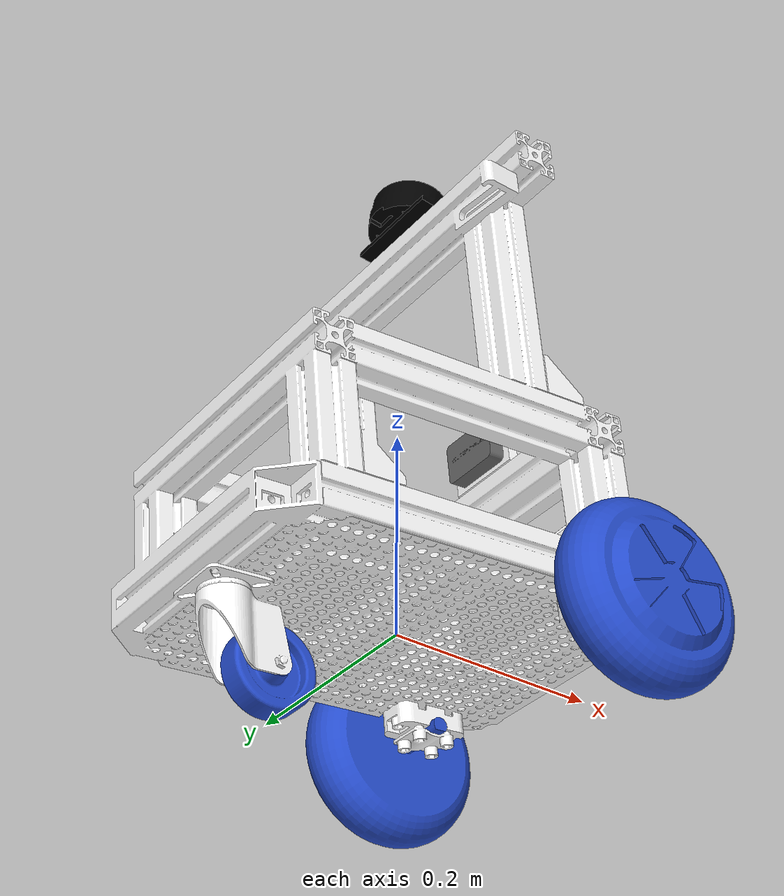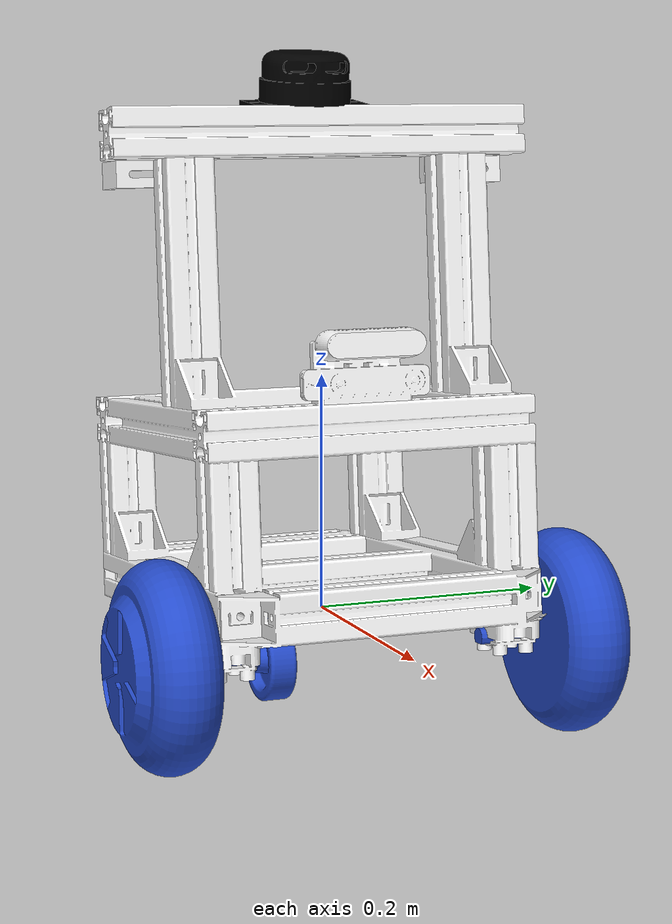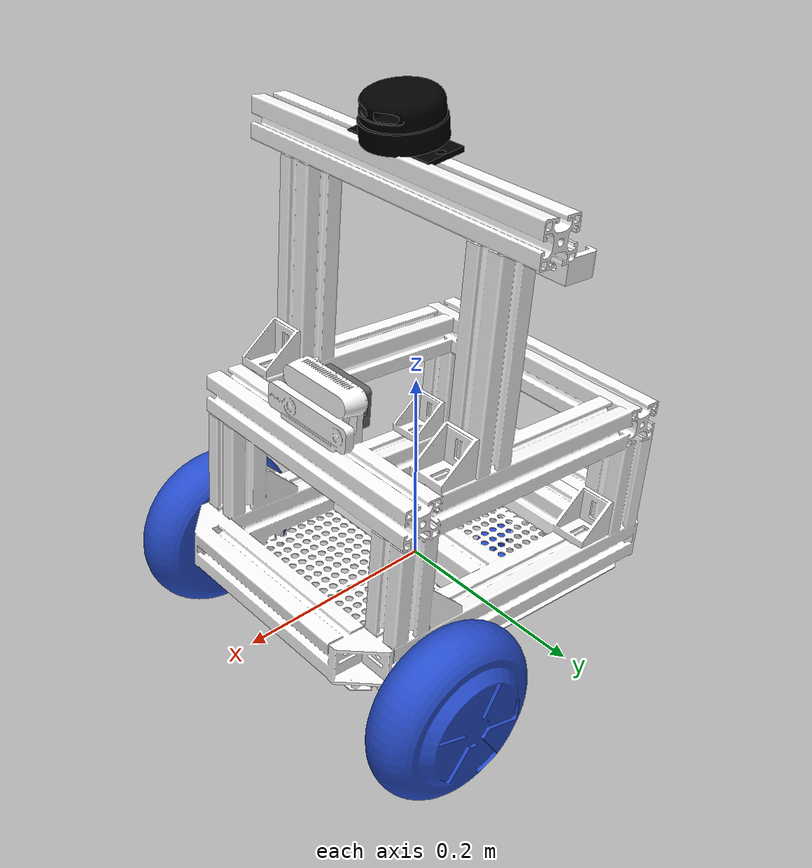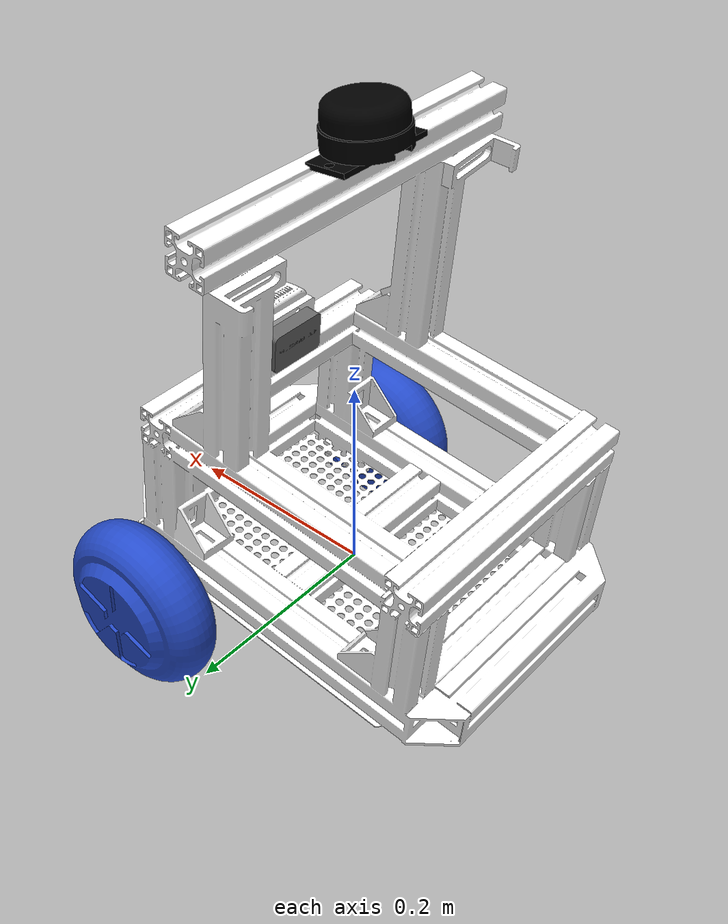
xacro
<?xml version="1.0" ?>
<robot name="mubot_navigation" xmlns:xacro="http://www.ros.org/wiki/xacro">

<xacro:include filename="$(find mubot_navigation)/urdf/mubot_materials.xacro" />

<xacro:include filename="$(find mubot_navigation)/gazebo/mubot_gazebo_materials.gazebo" />
<xacro:include filename="$(find mubot_navigation)/gazebo/mubot_gazebo_physics.gazebo" />
<xacro:include filename="$(find mubot_navigation)/gazebo/mubot_gazebo_plugins.gazebo" />

<!-- Define intertial property macros  -->
  <xacro:macro name="footprint_inertia" params="m w h d">
    <inertial>
      <origin xyz="0 0 0" rpy="0 0 0"/>
      <mass value="${m}"/>
      <inertia ixx="${(m/12) * (h*h + d*d)}" ixy="0.0" ixz="0.0" iyy="${(m/12) * (w*w + d*d)}" iyz="0.0" izz="${(m/12) * (w*w + h*h)}"/>
    </inertial>
  </xacro:macro>

<!-- ****************** ROBOT BASE FOOTPRINT ***************************  -->
  <!-- Define the center of the main robot chassis projected on the ground -->
  <link name="base_footprint">
    <xacro:footprint_inertia m="0" w="0" d="0" h="0"/>
  </link>

  <!-- The base footprint of the robot is located underneath the chassis -->
  <joint name="base_joint" type="fixed">
    <parent link="base_link"/>
    <child link="base_footprint"/>
    <origin xyz="0.0 0.0 -0.13" rpy="0 0 0"/>
  </joint>

<link name="base_link">
  <inertial>
    <origin xyz="-0.0136084000974873 -0.00499482087104461 0.123769128463892" rpy="0 0 0" />
    <mass  value="2.87937344341329" />
      <inertia ixx="0.00923445713103192" ixy="3.52264289819142e-06" ixz="-0.000441310208157926" iyy="0.007778859984883" iyz="-1.92193662635582e-06" izz="0.0139740820591221" />
    </inertial>
    <visual>
      <origin  xyz="0 0 0" rpy="0 0 0" />
     <geometry>
      <mesh filename="package://mubot_navigation/meshes/base_link.STL" />
    </geometry>
    <material name="white"/>
  </visual>
  <collision>
    <origin rpy="0 0 0" xyz="0 0 0"/>
    <geometry>
      <mesh filename="package://mubot_navigation/meshes/base_link.STL" />
    </geometry>
  </collision>
</link>

<link name="rightwheel_link">
  <inertial>
      <origin xyz="0.000348357029544388 0.0317321533300312 0.000261322314043799" rpy="0 0 0" />
      <mass value="1.20281527208295" />
      <inertia ixx="0.00224144277374002" ixy="1.36272157740343e-07" ixz="-1.17061213813287e-07" iyy="0.00378443700729495" iyz="-1.52384434101423e-07" izz="0.00224154314643243" />
    </inertial>
    <visual>
      <origin
        xyz="0 0 0"
        rpy="0 0 0" />
      <geometry>
      <mesh filename="package://mubot_navigation/meshes/rightwheel_link.STL" />
    </geometry>
    <material name="blue"/>
  </visual>
  <collision>
    <origin rpy="0 0 0" xyz="0 0 0"/>
    <geometry>
      <mesh filename="package://mubot_navigation/meshes/rightwheel_link.STL" />
    </geometry>
  </collision>
</link>

<link name="leftwheel_link">
<inertial>
  <origin xyz="-0.000352673824352112 -0.0317321533300245 0.000255466525181297" rpy="0 0 0" />
      <mass value="1.20281527208295" />
      <inertia ixx="0.00224143889126708" ixy="1.33707553267732e-07" ixz="1.15319382243967e-07" iyy="0.00378443700729495" iyz="1.54639604851796e-07" izz="0.00224154702890537" />
 </inertial>
  <visual>
    <origin rpy="0 0 0" xyz="0 0 0"/>
    <geometry>
      <mesh filename="package://mubot_navigation/meshes/leftwheel_link.STL" />
    </geometry>
    <material name="blue"/>
  </visual>
  <collision>
    <origin rpy="0 0 0" xyz="0 0 0"/>
    <geometry>
      <mesh filename="package://mubot_navigation/meshes/leftwheel_link.STL" />
    </geometry>
  </collision>
</link>

<link name="casterwheel_link">
 <inertial>
      <origin xyz="-6.24439615906636e-05 0.00990492035647383 -5.80874061309467e-06" rpy="0 0 0" />
      <mass value="0.100245438847884" />
      <inertia ixx="4.77243077216562e-05" ixy="-2.46163109776874e-07" ixz="1.44362357471191e-10" iyy="8.67693815516973e-05" iyz="-2.28988939327255e-08" izz="4.77227692553699e-05" />
    </inertial>
  <visual>
    <origin rpy="0 0 0" xyz="0 0 0"/>
    <geometry>
      <mesh filename="package://mubot_navigation/meshes/casterwheel_link.STL" />
    </geometry>
    <material name="blue"/>
  </visual>
  <collision>
    <origin rpy="0 0 0" xyz="0 0 0"/>
    <geometry>
      <mesh filename="package://mubot_navigation/meshes/casterwheel_link.STL" />
    </geometry>
  </collision>
</link>

<link name="lidar_link">
  <inertial>
      <origin xyz="-0.00275922326082423 -3.31898697414346E-09 -0.0238638841119722" rpy="0 0 0" />
      <mass value="0.184636979847826" />
      <inertia ixx="0.000103449890522048" ixy="-5.13903986856189e-11" ixz="4.77430413979597e-06" iyy="8.60324507903863e-05" iyz="-2.25997898356887e-11" izz="0.000127438215274729" />
    </inertial>
    <visual>
      <origin
        xyz="0 0 0"
        rpy="0 0 0" />
   <geometry>
      <mesh filename="package://mubot_navigation/meshes/lidar_Link.STL" />
    </geometry>
    <material name="black"/>
  </visual>
  <collision>
    <origin rpy="0 0 0" xyz="0 0 0"/>
    <geometry>
      <mesh filename="package://mubot_navigation/meshes/lidar_Link.STL" />
    </geometry>
  </collision>
</link>

<link name="camera_link">
  <inertial>
      <origin xyz="0.0162971268748396 0.0029869799766481 0.00522728663273986" rpy="0 0 0" />
      <mass value="0.114396036760118" />
      <inertia ixx="8.33969676064508e-05" ixy="1.79636899763931e-07" ixz="3.17036861263759e-06" iyy="1.7277322876418e-05" iyz="4.50856779192012e-08" izz="7.67394181590166e-05" />
    </inertial>
    <visual>
      <origin
        xyz="0 0 0"
        rpy="0 0 0" />
    <geometry>
      <mesh filename="package://mubot_navigation/meshes/camera_link.STL" />
    </geometry>
    <material name="white"/>
  </visual>
  <collision>
    <origin rpy="0 0 0" xyz="0 0 0"/>
    <geometry>
      <mesh filename="package://mubot_navigation/meshes/camera_link.STL" />
    </geometry>
  </collision>
</link>

<link name="imu_link">
  <inertial>
      <origin xyz="0.00753837730862272 -0.000163080304747665 3.09106131575754e-05" rpy="0 0 0" />
      <mass value="0.0352181888426215" />
      <inertia ixx="1.49798975786619e-05" ixy="-9.01256775385173e-09" ixz="-1.82165438541265e-09" iyy="5.34424428177353e-06" iyz="-7.62428059050258e-10" izz="1.09603367236951e-05" />
    </inertial>
    <visual>
      <origin
        xyz="0 0 0"
        rpy="0 0 0" />
   <geometry>
      <mesh filename="package://mubot_navigation/meshes/imu_Link.STL" />
    </geometry>
    <material name="grey"/>
  </visual>
  <collision>
    <origin rpy="0 0 0" xyz="0 0 0"/>
    <geometry>
      <mesh filename="package://mubot_navigation/meshes/imu_Link.STL" />
    </geometry>
  </collision>
</link>

<joint name="rightwheel_joint" type="continuous">
  <origin xyz="0.11527 -0.21055 -0.0088694" rpy="0 0 0" />
  <parent link="base_link"/>
  <child link="rightwheel_link"/>
  <axis xyz="0.0 1.0 0.0"/>
</joint>

<joint name="leftwheel_joint" type="continuous">
   <origin xyz="0.11596 0.20485 -0.0088636" rpy="0 0 0" />
  <parent link="base_link"/>
  <child link="leftwheel_link"/>
  <axis xyz="0.0 1.0 0.0"/>   <!-- change the value to minus to reverse the direction of motion -->
</joint>

<joint name="casterwheel_joint" type="fixed">
  <origin xyz="-0.12387 -0.012159 -0.075297"  rpy="0 0 0" />
  <parent link="base_link"/>
  <child link="casterwheel_link"/>
</joint>

<joint name="lidar_joint" type="fixed">
  <origin xyz="0.0045887 -0.015258 0.46928" rpy="0 0 0" />
  <parent link="base_link"/>
  <child link="lidar_link"/>
</joint>

<joint name="camera_joint" type="fixed">
  <origin xyz="0.089004 -0.0064195 0.21502" rpy="0 0 0" />
  <parent link="base_link"/>
  <child link="camera_link"/>
</joint>

<joint name="imu_joint" type="fixed">
  <origin xyz="0.074148 -0.0067385 0.21278" rpy="0 -0.092756 0" />
  <parent link="base_link"/>
  <child link="imu_link"/>
</joint>

</robot>

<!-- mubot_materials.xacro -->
<robot name="mubot_navigation" xmlns:xacro="http://www.ros.org/wiki/xacro" >

<material name="white">
  <color rgba="01.00 01.00 01.00 1.000"/>
</material>

<material name="yellow">
  <color rgba="01.00 01.00 00.50 1.000"/>
</material>

<material name="black">
  <color rgba="00.00 00.00 00.00 1.000"/>
</material>

<material name="grey">
  <color rgba="00.40 00.40 00.40 1.000"/>
</material>

</robot>

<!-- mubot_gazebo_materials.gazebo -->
<robot name="mubot_navigation" xmlns:xacro="http://www.ros.org/wiki/xacro" >

<xacro:property name="base_link_color" value="Gazebo/White" />
<xacro:property name="camera_link_color" value="Gazebo/White" />
<xacro:property name="lidar_link_color" value="Gazebo/LightBlueLaser" />
<xacro:property name="imu_link_color" value="Gazebo/Black" />
<xacro:property name="wheels_link_color" value="Gazebo/Black" />
<xacro:property name="casterwheel_link_color" value="Gazebo/Yellow" />

<gazebo reference="base_link">
  <material>${base_link_color}</material>
</gazebo>

<gazebo reference="camera_link">
  <material>${camera_link_color}</material>
</gazebo>

<gazebo reference="imu_link">
  <material>${imu_link_color}</material>
</gazebo>

<gazebo reference="rightwheel_link">
  <material>${wheels_link_color}</material>
</gazebo>

<gazebo reference="leftwheel_link">
  <material>${wheels_link_color}</material>
</gazebo>

<gazebo reference="casterwheel_link">
  <material>${casterwheel_link_color}</material>
</gazebo>

<gazebo reference="lidar_link">
  <material>${lidar_link_color}</material>
</gazebo>

</robot>
